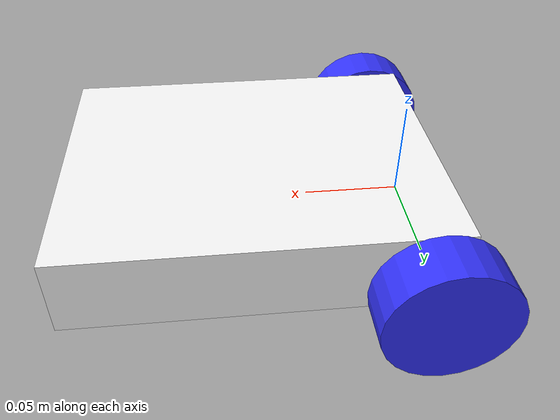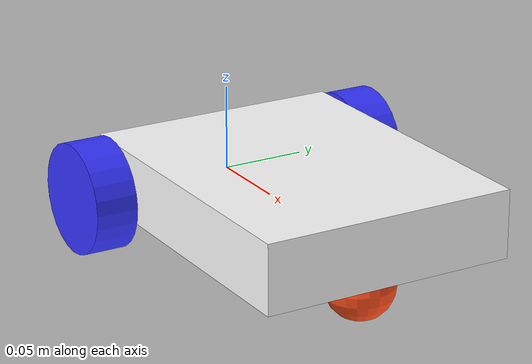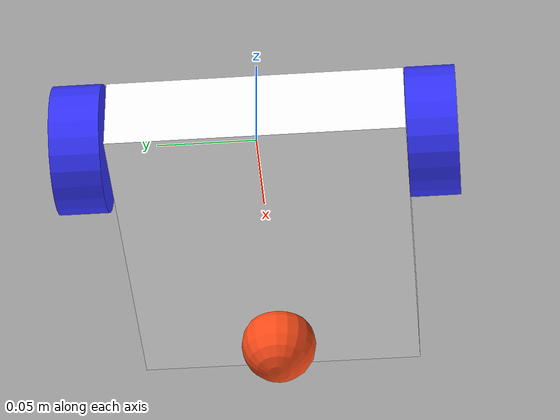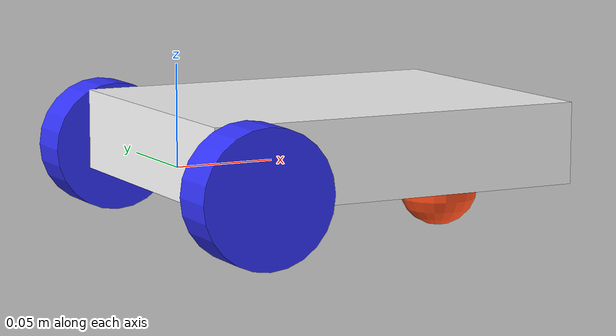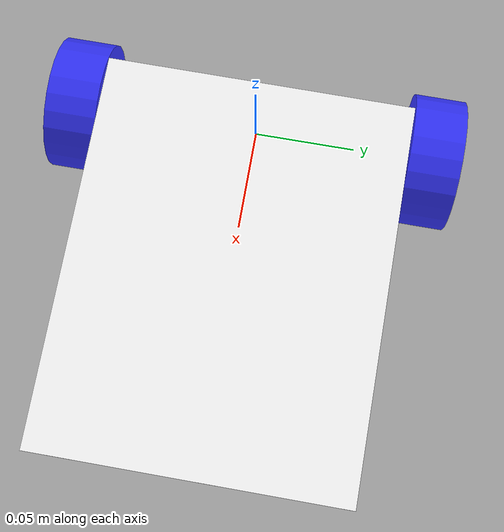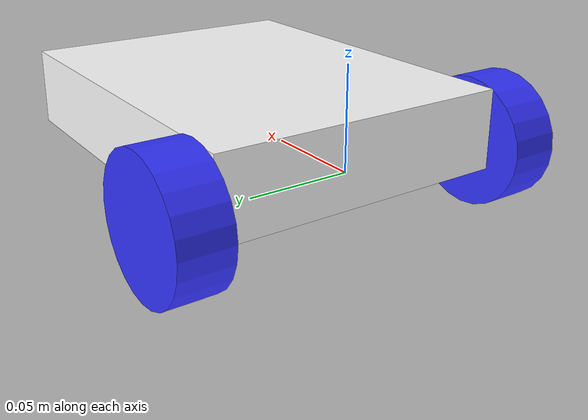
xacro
<?xml version="1.0"?>
<robot xmlns:xacro="http://www.ros.org/wiki/xacro" >

    <xacro:include filename="inertial_macros.xacro"/>

    <material name="white">
        <color rgba="1 1 1 1" />
    </material>

    <material name="orange">
        <color rgba="1 0.3 0.1 1" />
    </material>

    <material name="blue">
        <color rgba="0.2 0.2 1 1" />
    </material>

    <material name="black">
        <color rgba="0 0 0 1" />
    </material>

    <!-- base_link -->
    <link name="base_link">

    </link>

    <!--chasis link-->
    <joint name="chassis_joint" type="fixed">
        <parent link="base_link" />
        <child link="chassis" />
        <origin xyz="-0.015 0 0"/>
    </joint>

    <link name="chassis">
        <visual>
            <origin xyz="0.095 0 0.01"/>
            <geometry>
                <box size="0.19 0.15 0.04"/>
            </geometry>
            <material name="white"/>
        </visual>
        <collision>
            <origin xyz="0.095 0 0.01"/>
            <geometry>
                <box size="0.19 0.15 0.04"/>
            </geometry>
        </collision>
        <xacro:inertial_box mass="0.5" x="0.19" y="0.15" z="0.04">
            <origin xyz ="0.095 0 0.01" rpy="0.0 0.0 0.0"/>
        </xacro:inertial_box>
    </link>

    <!-- LEFT WHEEL LINK -->

    <joint name="left_wheel" type="continuous">
        <parent link="base_link"/>
        <child link="left_wheel"/>
        <origin xyz="0.0 0.088 0.0" rpy=" -${pi/2} 0.0 0.0"/>
        <axis xyz="0.0 0.0 1"/>
    </joint>

    <link name="left_wheel">
    <visual>
        <geometry>
            <cylinder radius="0.0325" length="0.025"/>
        </geometry>
        <material name="blue"/>
    </visual>
    <collision>
        <geometry>
            <cylinder radius="0.0325" length="0.025"/>
        </geometry>
    </collision>
    <xacro:inertial_cylinder mass="0.1" length="0.04" radius="0.05">
        <origin xyz="0 0 0" rpy="0 0 0"/>
    </xacro:inertial_cylinder>
    </link>

<!-- RIGHT WHEEL LINK -->

    <joint name="right_wheel" type="continuous">
        <parent link="base_link"/>
        <child link="right_wheel"/>
        <origin xyz="0.0 -0.088 0.0" rpy="${pi/2} 0.0 0.0"/>
        <axis xyz="0.0 0.0 -1"/>
    </joint>

    <link name="right_wheel">
    <visual>
        <geometry>
            <cylinder radius="0.0325" length="0.025"/>
        </geometry>
        <material name="blue"/>
    </visual>
    <collision>
        <geometry>
            <cylinder radius="0.0325" length="0.025"/>
        </geometry>
    </collision>
    <xacro:inertial_cylinder mass="0.1" length="0.04" radius="0.05">
        <origin xyz="0 0 0" rpy="0 0 0"/>
    </xacro:inertial_cylinder>
    </link>

    <!-- CASTER WHEEL LINK -->

    <joint name="caster_wheel" type="fixed">
        <parent link="chassis"/>
        <child link="caster_wheel"/>
        <origin xyz="0.16 0 -0.02"/>
    </joint>

    <link name="caster_wheel">
    <visual>
        <geometry>
            <sphere radius="0.02"/>
        </geometry>
        <material name="orange"/>
    </visual>
    <collision>
        <geometry>
            <sphere radius="0.02"/>
        </geometry>
    </collision>
    <xacro:inertial_sphere mass="0.1" radius="0.05">
        <origin xyz="0 0 0" rpy="0 0 0"/>
    </xacro:inertial_sphere>
    </link>
</robot>
